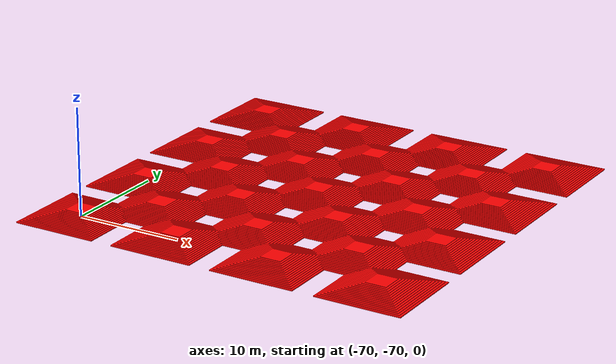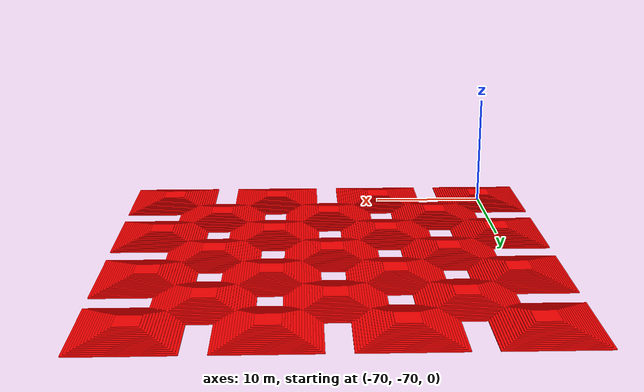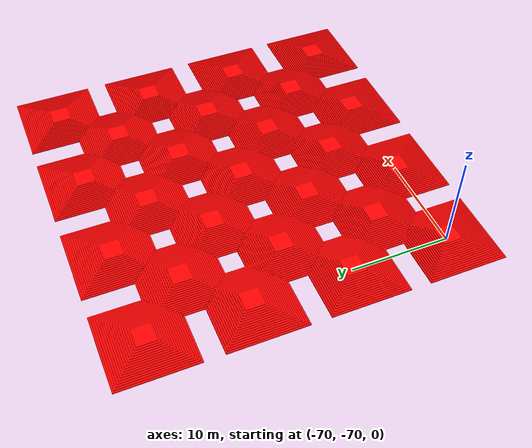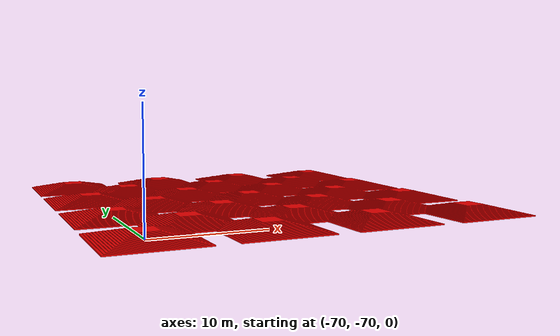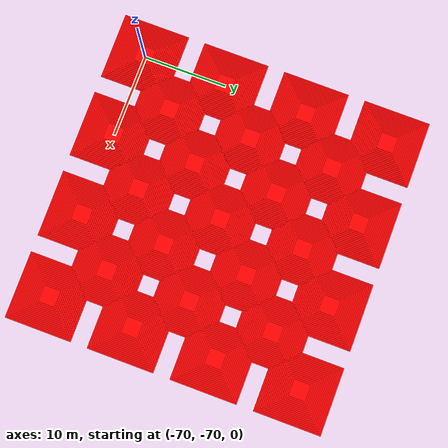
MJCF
<mujoco model="random_box_terrain">
    <compiler angle="degree" coordinate="local"/>
    <option timestep="0.01" gravity="0 0 -9.81" integrator="RK4"/>

    <asset>
        <texture type="2d" name="Plastic006_color"      file="../../textures/Plastic006_2K-PNG/Plastic006_2K-PNG_Color.png"/>
        <texture type="2d" name="Plastic006_roughness"  file="../../textures/Plastic006_2K-PNG/Plastic006_2K-PNG_Roughness.png"/>
        <texture type="2d" name="Plastic006_normal"     file="../../textures/Plastic006_2K-PNG/Plastic006_2K-PNG_NormalDX.png"/>

        <material name="pbr_plastic_black" metallic ="0.05" roughness="1.0" rgba="1 0 0 1.0">
        <layer role="rgb"        texture="Plastic006_color"/>
        <layer role="normal"     texture="Plastic006_normal"/>
        <layer role="roughness"  texture="Plastic006_roughness"/>
        </material>

        <texture type="2d" name="Plastic013A_color"      file="../../textures/Plastic013A_2K-PNG/Plastic013A_2K-PNG_Color.png"/>
        <texture type="2d" name="Plastic013A_roughness"  file="../../textures/Plastic013A_2K-PNG/Plastic013A_2K-PNG_Roughness.png"/>
        <texture type="2d" name="Plastic013A_normal"     file="../../textures/Plastic013A_2K-PNG/Plastic013A_2K-PNG_NormalDX.png"/>

        <material name="pbr_plastic_white" metallic ="0.05" roughness="1.0" rgba="1 0 0 1.0">
        <layer role="rgb"        texture="Plastic013A_color"/>
        <layer role="normal"     texture="Plastic013A_normal"/>
        <layer role="roughness"  texture="Plastic013A_roughness"/>
        </material>

        <texture type="2d" name="Plastic010_color"      file="../../textures/Plastic010_2K-PNG/Plastic010_2K-PNG_Color.png"/>
        <texture type="2d" name="Plastic010_roughness"  file="../../textures/Plastic010_2K-PNG/Plastic010_2K-PNG_Roughness.png"/>
        <texture type="2d" name="Plastic010_normal"     file="../../textures/Plastic010_2K-PNG/Plastic010_2K-PNG_NormalDX.png"/>

        <material name="pbr_plastic_gray" metallic ="0.05" roughness="1.0" rgba="1 0 0 1.0">
        <layer role="rgb"        texture="Plastic010_color"/>
        <layer role="normal"     texture="Plastic010_normal"/>
        <layer role="roughness"  texture="Plastic010_roughness"/>
        </material>
    </asset>
    <worldbody>
        <body name="offset" pos="-55 -55 0">
            <body name="terrain" pos="-5 5 0.0">

                <geom type="box" pos="-5.0 -5.0 0.0"  size="4.0 4.0  0.05"   material="pbr_plastic_gray"/>
                <geom type="box" pos="-5.0 -5.0 0.05" size="3.8 3.8  0.05"   material="pbr_plastic_white"/>
                <geom type="box" pos="-5.0 -5.0 0.1"  size="3.6 3.6  0.05"   material="pbr_plastic_gray"/>
                <geom type="box" pos="-5.0 -5.0 0.15" size="3.4 3.4  0.05"   material="pbr_plastic_white"/>
                <geom type="box" pos="-5.0 -5.0 0.2"  size="3.2 3.2  0.05"   material="pbr_plastic_gray"/>
                <geom type="box" pos="-5.0 -5.0 0.25" size="3.0 3.0  0.05"   material="pbr_plastic_white"/>
                <geom type="box" pos="-5.0 -5.0 0.3"  size="2.8 2.8  0.05"   material="pbr_plastic_gray"/>
                <geom type="box" pos="-5.0 -5.0 0.35" size="2.6 2.6  0.05"   material="pbr_plastic_white"/>
                <geom type="box" pos="-5.0 -5.0 0.4"  size="2.4 2.4  0.05"   material="pbr_plastic_gray"/>
                <geom type="box" pos="-5.0 -5.0 0.45" size="2.2 2.2  0.05"   material="pbr_plastic_white"/>
                <geom type="box" pos="-5.0 -5.0 0.5"  size="2.0 2.0  0.05"   material="pbr_plastic_gray"/>
                <geom type="box" pos="-5.0 -5.0 0.55" size="1.8 1.8  0.05"   material="pbr_plastic_white"/>
                <geom type="box" pos="-5.0 -5.0 0.6"  size="1.6 1.6  0.05"   material="pbr_plastic_gray"/>
                <geom type="box" pos="-5.0 -5.0 0.65" size="1.4 1.4  0.05"   material="pbr_plastic_white"/>
                <geom type="box" pos="-5.0 -5.0 0.7"  size="1.2 1.2  0.05"   material="pbr_plastic_gray"/>
                <geom type="box" pos="-5.0 -5.0 0.75" size="1.0 1.0  0.05"   material="pbr_plastic_white"/>

                <geom type="box" pos="5.0 -5.0 0.0"  size="4.0 4.0  0.05"   material="pbr_plastic_gray"/>
                <geom type="box" pos="5.0 -5.0 0.05" size="3.8 3.8  0.05"   material="pbr_plastic_white"/>
                <geom type="box" pos="5.0 -5.0 0.1"  size="3.6 3.6  0.05"   material="pbr_plastic_gray"/>
                <geom type="box" pos="5.0 -5.0 0.15" size="3.4 3.4  0.05"   material="pbr_plastic_white"/>
                <geom type="box" pos="5.0 -5.0 0.2"  size="3.2 3.2  0.05"   material="pbr_plastic_gray"/>
                <geom type="box" pos="5.0 -5.0 0.25" size="3.0 3.0  0.05"   material="pbr_plastic_white"/>
                <geom type="box" pos="5.0 -5.0 0.3"  size="2.8 2.8  0.05"   material="pbr_plastic_gray"/>
                <geom type="box" pos="5.0 -5.0 0.35" size="2.6 2.6  0.05"   material="pbr_plastic_white"/>
                <geom type="box" pos="5.0 -5.0 0.4"  size="2.4 2.4  0.05"   material="pbr_plastic_gray"/>
                <geom type="box" pos="5.0 -5.0 0.45" size="2.2 2.2  0.05"   material="pbr_plastic_white"/>
                <geom type="box" pos="5.0 -5.0 0.5"  size="2.0 2.0  0.05"   material="pbr_plastic_gray"/>
                <geom type="box" pos="5.0 -5.0 0.55" size="1.8 1.8  0.05"   material="pbr_plastic_white"/>
                <geom type="box" pos="5.0 -5.0 0.6"  size="1.6 1.6  0.05"   material="pbr_plastic_gray"/>
                <geom type="box" pos="5.0 -5.0 0.65" size="1.4 1.4  0.05"   material="pbr_plastic_white"/>
                <geom type="box" pos="5.0 -5.0 0.7"  size="1.2 1.2  0.05"   material="pbr_plastic_gray"/>
                <geom type="box" pos="5.0 -5.0 0.75" size="1.0 1.0  0.05"   material="pbr_plastic_white"/>

                <geom type="box" pos="15.0 -5.0 0.0"  size="4.0 4.0  0.05"   material="pbr_plastic_gray"/>
                <geom type="box" pos="15.0 -5.0 0.05" size="3.8 3.8  0.05"   material="pbr_plastic_white"/>
                <geom type="box" pos="15.0 -5.0 0.1"  size="3.6 3.6  0.05"   material="pbr_plastic_gray"/>
                <geom type="box" pos="15.0 -5.0 0.15" size="3.4 3.4  0.05"   material="pbr_plastic_white"/>
                <geom type="box" pos="15.0 -5.0 0.2"  size="3.2 3.2  0.05"   material="pbr_plastic_gray"/>
                <geom type="box" pos="15.0 -5.0 0.25" size="3.0 3.0  0.05"   material="pbr_plastic_white"/>
                <geom type="box" pos="15.0 -5.0 0.3"  size="2.8 2.8  0.05"   material="pbr_plastic_gray"/>
                <geom type="box" pos="15.0 -5.0 0.35" size="2.6 2.6  0.05"   material="pbr_plastic_white"/>
                <geom type="box" pos="15.0 -5.0 0.4"  size="2.4 2.4  0.05"   material="pbr_plastic_gray"/>
                <geom type="box" pos="15.0 -5.0 0.45" size="2.2 2.2  0.05"   material="pbr_plastic_white"/>
                <geom type="box" pos="15.0 -5.0 0.5"  size="2.0 2.0  0.05"   material="pbr_plastic_gray"/>
                <geom type="box" pos="15.0 -5.0 0.55" size="1.8 1.8  0.05"   material="pbr_plastic_white"/>
                <geom type="box" pos="15.0 -5.0 0.6"  size="1.6 1.6  0.05"   material="pbr_plastic_gray"/>
                <geom type="box" pos="15.0 -5.0 0.65" size="1.4 1.4  0.05"   material="pbr_plastic_white"/>
                <geom type="box" pos="15.0 -5.0 0.7"  size="1.2 1.2  0.05"   material="pbr_plastic_gray"/>
                <geom type="box" pos="15.0 -5.0 0.75" size="1.0 1.0  0.05"   material="pbr_plastic_white"/>

                <geom type="box" pos="-5.0 5.0 0.0"  size="4.0 4.0  0.05"   material="pbr_plastic_gray"/>
                <geom type="box" pos="-5.0 5.0 0.05" size="3.8 3.8  0.05"   material="pbr_plastic_white"/>
                <geom type="box" pos="-5.0 5.0 0.1"  size="3.6 3.6  0.05"   material="pbr_plastic_gray"/>
                <geom type="box" pos="-5.0 5.0 0.15" size="3.4 3.4  0.05"   material="pbr_plastic_white"/>
                <geom type="box" pos="-5.0 5.0 0.2"  size="3.2 3.2  0.05"   material="pbr_plastic_gray"/>
                <geom type="box" pos="-5.0 5.0 0.25" size="3.0 3.0  0.05"   material="pbr_plastic_white"/>
                <geom type="box" pos="-5.0 5.0 0.3"  size="2.8 2.8  0.05"   material="pbr_plastic_gray"/>
                <geom type="box" pos="-5.0 5.0 0.35" size="2.6 2.6  0.05"   material="pbr_plastic_white"/>
                <geom type="box" pos="-5.0 5.0 0.4"  size="2.4 2.4  0.05"   material="pbr_plastic_gray"/>
                <geom type="box" pos="-5.0 5.0 0.45" size="2.2 2.2  0.05"   material="pbr_plastic_white"/>
                <geom type="box" pos="-5.0 5.0 0.5"  size="2.0 2.0  0.05"   material="pbr_plastic_gray"/>
                <geom type="box" pos="-5.0 5.0 0.55" size="1.8 1.8  0.05"   material="pbr_plastic_white"/>
                <geom type="box" pos="-5.0 5.0 0.6"  size="1.6 1.6  0.05"   material="pbr_plastic_gray"/>
                <geom type="box" pos="-5.0 5.0 0.65" size="1.4 1.4  0.05"   material="pbr_plastic_white"/>
                <geom type="box" pos="-5.0 5.0 0.7"  size="1.2 1.2  0.05"   material="pbr_plastic_gray"/>
                <geom type="box" pos="-5.0 5.0 0.75" size="1.0 1.0  0.05"   material="pbr_plastic_white"/>

                <geom type="box" pos="5.0 5.0 0.0"  size="4.0 4.0  0.05"   material="pbr_plastic_gray"/>
                <geom type="box" pos="5.0 5.0 0.05" size="3.8 3.8  0.05"   material="pbr_plastic_white"/>
                <geom type="box" pos="5.0 5.0 0.1"  size="3.6 3.6  0.05"   material="pbr_plastic_gray"/>
                <geom type="box" pos="5.0 5.0 0.15" size="3.4 3.4  0.05"   material="pbr_plastic_white"/>
                <geom type="box" pos="5.0 5.0 0.2"  size="3.2 3.2  0.05"   material="pbr_plastic_gray"/>
                <geom type="box" pos="5.0 5.0 0.25" size="3.0 3.0  0.05"   material="pbr_plastic_white"/>
                <geom type="box" pos="5.0 5.0 0.3"  size="2.8 2.8  0.05"   material="pbr_plastic_gray"/>
                <geom type="box" pos="5.0 5.0 0.35" size="2.6 2.6  0.05"   material="pbr_plastic_white"/>
                <geom type="box" pos="5.0 5.0 0.4"  size="2.4 2.4  0.05"   material="pbr_plastic_gray"/>
                <geom type="box" pos="5.0 5.0 0.45" size="2.2 2.2  0.05"   material="pbr_plastic_white"/>
                <geom type="box" pos="5.0 5.0 0.5"  size="2.0 2.0  0.05"   material="pbr_plastic_gray"/>
                <geom type="box" pos="5.0 5.0 0.55" size="1.8 1.8  0.05"   material="pbr_plastic_white"/>
                <geom type="box" pos="5.0 5.0 0.6"  size="1.6 1.6  0.05"   material="pbr_plastic_gray"/>
                <geom type="box" pos="5.0 5.0 0.65" size="1.4 1.4  0.05"   material="pbr_plastic_white"/>
                <geom type="box" pos="5.0 5.0 0.7"  size="1.2 1.2  0.05"   material="pbr_plastic_gray"/>
                <geom type="box" pos="5.0 5.0 0.75" size="1.0 1.0  0.05"   material="pbr_plastic_white"/>

                <geom type="box" pos="15.0 5.0 0.0"  size="4.0 4.0  0.05"   material="pbr_plastic_gray"/>
                <geom type="box" pos="15.0 5.0 0.05" size="3.8 3.8  0.05"   material="pbr_plastic_white"/>
                <geom type="box" pos="15.0 5.0 0.1"  size="3.6 3.6  0.05"   material="pbr_plastic_gray"/>
                <geom type="box" pos="15.0 5.0 0.15" size="3.4 3.4  0.05"   material="pbr_plastic_white"/>
                <geom type="box" pos="15.0 5.0 0.2"  size="3.2 3.2  0.05"   material="pbr_plastic_gray"/>
                <geom type="box" pos="15.0 5.0 0.25" size="3.0 3.0  0.05"   material="pbr_plastic_white"/>
                <geom type="box" pos="15.0 5.0 0.3"  size="2.8 2.8  0.05"   material="pbr_plastic_gray"/>
                <geom type="box" pos="15.0 5.0 0.35" size="2.6 2.6  0.05"   material="pbr_plastic_white"/>
                <geom type="box" pos="15.0 5.0 0.4"  size="2.4 2.4  0.05"   material="pbr_plastic_gray"/>
                <geom type="box" pos="15.0 5.0 0.45" size="2.2 2.2  0.05"   material="pbr_plastic_white"/>
                <geom type="box" pos="15.0 5.0 0.5"  size="2.0 2.0  0.05"   material="pbr_plastic_gray"/>
                <geom type="box" pos="15.0 5.0 0.55" size="1.8 1.8  0.05"   material="pbr_plastic_white"/>
                <geom type="box" pos="15.0 5.0 0.6"  size="1.6 1.6  0.05"   material="pbr_plastic_gray"/>
                <geom type="box" pos="15.0 5.0 0.65" size="1.4 1.4  0.05"   material="pbr_plastic_white"/>
                <geom type="box" pos="15.0 5.0 0.7"  size="1.2 1.2  0.05"   material="pbr_plastic_gray"/>
                <geom type="box" pos="15.0 5.0 0.75" size="1.0 1.0  0.05"   material="pbr_plastic_white"/>

                <geom type="box" pos="-5.0 -15.0 0.0"  size="4.0 4.0  0.05"   material="pbr_plastic_gray"/>
                <geom type="box" pos="-5.0 -15.0 0.05" size="3.8 3.8  0.05"   material="pbr_plastic_white"/>
                <geom type="box" pos="-5.0 -15.0 0.1"  size="3.6 3.6  0.05"   material="pbr_plastic_gray"/>
                <geom type="box" pos="-5.0 -15.0 0.15" size="3.4 3.4  0.05"   material="pbr_plastic_white"/>
                <geom type="box" pos="-5.0 -15.0 0.2"  size="3.2 3.2  0.05"   material="pbr_plastic_gray"/>
                <geom type="box" pos="-5.0 -15.0 0.25" size="3.0 3.0  0.05"   material="pbr_plastic_white"/>
                <geom type="box" pos="-5.0 -15.0 0.3"  size="2.8 2.8  0.05"   material="pbr_plastic_gray"/>
                <geom type="box" pos="-5.0 -15.0 0.35" size="2.6 2.6  0.05"   material="pbr_plastic_white"/>
                <geom type="box" pos="-5.0 -15.0 0.4"  size="2.4 2.4  0.05"   material="pbr_plastic_gray"/>
                <geom type="box" pos="-5.0 -15.0 0.45" size="2.2 2.2  0.05"   material="pbr_plastic_white"/>
                <geom type="box" pos="-5.0 -15.0 0.5"  size="2.0 2.0  0.05"   material="pbr_plastic_gray"/>
                <geom type="box" pos="-5.0 -15.0 0.55" size="1.8 1.8  0.05"   material="pbr_plastic_white"/>
                <geom type="box" pos="-5.0 -15.0 0.6"  size="1.6 1.6  0.05"   material="pbr_plastic_gray"/>
                <geom type="box" pos="-5.0 -15.0 0.65" size="1.4 1.4  0.05"   material="pbr_plastic_white"/>
                <geom type="box" pos="-5.0 -15.0 0.7"  size="1.2 1.2  0.05"   material="pbr_plastic_gray"/>
                <geom type="box" pos="-5.0 -15.0 0.75" size="1.0 1.0  0.05"   material="pbr_plastic_white"/>

                <geom type="box" pos="5.0 -15.0 0.0"  size="4.0 4.0  0.05"   material="pbr_plastic_gray"/>
                <geom type="box" pos="5.0 -15.0 0.05" size="3.8 3.8  0.05"   material="pbr_plastic_white"/>
                <geom type="box" pos="5.0 -15.0 0.1"  size="3.6 3.6  0.05"   material="pbr_plastic_gray"/>
                <geom type="box" pos="5.0 -15.0 0.15" size="3.4 3.4  0.05"   material="pbr_plastic_white"/>
                <geom type="box" pos="5.0 -15.0 0.2"  size="3.2 3.2  0.05"   material="pbr_plastic_gray"/>
                <geom type="box" pos="5.0 -15.0 0.25" size="3.0 3.0  0.05"   material="pbr_plastic_white"/>
                <geom type="box" pos="5.0 -15.0 0.3"  size="2.8 2.8  0.05"   material="pbr_plastic_gray"/>
                <geom type="box" pos="5.0 -15.0 0.35" size="2.6 2.6  0.05"   material="pbr_plastic_white"/>
                <geom type="box" pos="5.0 -15.0 0.4"  size="2.4 2.4  0.05"   material="pbr_plastic_gray"/>
                <geom type="box" pos="5.0 -15.0 0.45" size="2.2 2.2  0.05"   material="pbr_plastic_white"/>
                <geom type="box" pos="5.0 -15.0 0.5"  size="2.0 2.0  0.05"   material="pbr_plastic_gray"/>
                <geom type="box" pos="5.0 -15.0 0.55" size="1.8 1.8  0.05"   material="pbr_plastic_white"/>
                <geom type="box" pos="5.0 -15.0 0.6"  size="1.6 1.6  0.05"   material="pbr_plastic_gray"/>
                <geom type="box" pos="5.0 -15.0 0.65" size="1.4 1.4  0.05"   material="pbr_plastic_white"/>
                <geom type="box" pos="5.0 -15.0 0.7"  size="1.2 1.2  0.05"   material="pbr_plastic_gray"/>
                <geom type="box" pos="5.0 -15.0 0.75" size="1.0 1.0  0.05"   material="pbr_plastic_white"/>

                <geom type="box" pos="15.0 -15.0 0.0"  size="4.0 4.0  0.05"   material="pbr_plastic_gray"/>
                <geom type="box" pos="15.0 -15.0 0.05" size="3.8 3.8  0.05"   material="pbr_plastic_white"/>
                <geom type="box" pos="15.0 -15.0 0.1"  size="3.6 3.6  0.05"   material="pbr_plastic_gray"/>
                <geom type="box" pos="15.0 -15.0 0.15" size="3.4 3.4  0.05"   material="pbr_plastic_white"/>
                <geom type="box" pos="15.0 -15.0 0.2"  size="3.2 3.2  0.05"   material="pbr_plastic_gray"/>
                <geom type="box" pos="15.0 -15.0 0.25" size="3.0 3.0  0.05"   material="pbr_plastic_white"/>
                <geom type="box" pos="15.0 -15.0 0.3"  size="2.8 2.8  0.05"   material="pbr_plastic_gray"/>
                <geom type="box" pos="15.0 -15.0 0.35" size="2.6 2.6  0.05"   material="pbr_plastic_white"/>
                <geom type="box" pos="15.0 -15.0 0.4"  size="2.4 2.4  0.05"   material="pbr_plastic_gray"/>
                <geom type="box" pos="15.0 -15.0 0.45" size="2.2 2.2  0.05"   material="pbr_plastic_white"/>
                <geom type="box" pos="15.0 -15.0 0.5"  size="2.0 2.0  0.05"   material="pbr_plastic_gray"/>
                <geom type="box" pos="15.0 -15.0 0.55" size="1.8 1.8  0.05"   material="pbr_plastic_white"/>
                <geom type="box" pos="15.0 -15.0 0.6"  size="1.6 1.6  0.05"   material="pbr_plastic_gray"/>
                <geom type="box" pos="15.0 -15.0 0.65" size="1.4 1.4  0.05"   material="pbr_plastic_white"/>
                <geom type="box" pos="15.0 -15.0 0.7"  size="1.2 1.2  0.05"   material="pbr_plastic_gray"/>
                <geom type="box" pos="15.0 -15.0 0.75" size="1.0 1.0  0.05"   material="pbr_plastic_white"/>

                <geom type="box" pos="-10.0 0 0.0"  size="4.0 4.0  0.05"   material="pbr_plastic_gray"/>
                <geom type="box" pos="-10.0 0 0.05" size="3.8 3.8  0.05"   material="pbr_plastic_white"/>
                <geom type="box" pos="-10.0 0 0.1"  size="3.6 3.6  0.05"   material="pbr_plastic_gray"/>
                <geom type="box" pos="-10.0 0 0.15" size="3.4 3.4  0.05"   material="pbr_plastic_white"/>
                <geom type="box" pos="-10.0 0 0.2"  size="3.2 3.2  0.05"   material="pbr_plastic_gray"/>
                <geom type="box" pos="-10.0 0 0.25" size="3.0 3.0  0.05"   material="pbr_plastic_white"/>
                <geom type="box" pos="-10.0 0 0.3"  size="2.8 2.8  0.05"   material="pbr_plastic_gray"/>
                <geom type="box" pos="-10.0 0 0.35" size="2.6 2.6  0.05"   material="pbr_plastic_white"/>
                <geom type="box" pos="-10.0 0 0.4"  size="2.4 2.4  0.05"   material="pbr_plastic_gray"/>
                <geom type="box" pos="-10.0 0 0.45" size="2.2 2.2  0.05"   material="pbr_plastic_white"/>
                <geom type="box" pos="-10.0 0 0.5"  size="2.0 2.0  0.05"   material="pbr_plastic_gray"/>
                <geom type="box" pos="-10.0 0 0.55" size="1.8 1.8  0.05"   material="pbr_plastic_white"/>
                <geom type="box" pos="-10.0 0 0.6"  size="1.6 1.6  0.05"   material="pbr_plastic_gray"/>
                <geom type="box" pos="-10.0 0 0.65" size="1.4 1.4  0.05"   material="pbr_plastic_white"/>
                <geom type="box" pos="-10.0 0 0.7"  size="1.2 1.2  0.05"   material="pbr_plastic_gray"/>
                <geom type="box" pos="-10.0 0 0.75" size="1.0 1.0  0.05"   material="pbr_plastic_white"/>

                <geom type="box" pos="0.0 0.0 0.0"  size="4.0 4.0  0.05"   material="pbr_plastic_gray"/>
                <geom type="box" pos="0.0 0.0 0.05" size="3.8 3.8  0.05"   material="pbr_plastic_white"/>
                <geom type="box" pos="0.0 0.0 0.1"  size="3.6 3.6  0.05"   material="pbr_plastic_gray"/>
                <geom type="box" pos="0.0 0.0 0.15" size="3.4 3.4  0.05"   material="pbr_plastic_white"/>
                <geom type="box" pos="0.0 0.0 0.2"  size="3.2 3.2  0.05"   material="pbr_plastic_gray"/>
                <geom type="box" pos="0.0 0.0 0.25" size="3.0 3.0  0.05"   material="pbr_plastic_white"/>
                <geom type="box" pos="0.0 0.0 0.3"  size="2.8 2.8  0.05"   material="pbr_plastic_gray"/>
                <geom type="box" pos="0.0 0.0 0.35" size="2.6 2.6  0.05"   material="pbr_plastic_white"/>
                <geom type="box" pos="0.0 0.0 0.4"  size="2.4 2.4  0.05"   material="pbr_plastic_gray"/>
                <geom type="box" pos="0.0 0.0 0.45" size="2.2 2.2  0.05"   material="pbr_plastic_white"/>
                <geom type="box" pos="0.0 0.0 0.5"  size="2.0 2.0  0.05"   material="pbr_plastic_gray"/>
                <geom type="box" pos="0.0 0.0 0.55" size="1.8 1.8  0.05"   material="pbr_plastic_white"/>
                <geom type="box" pos="0.0 0.0 0.6"  size="1.6 1.6  0.05"   material="pbr_plastic_gray"/>
                <geom type="box" pos="0.0 0.0 0.65" size="1.4 1.4  0.05"   material="pbr_plastic_white"/>
                <geom type="box" pos="0.0 0.0 0.7"  size="1.2 1.2  0.05"   material="pbr_plastic_gray"/>
                <geom type="box" pos="0.0 0.0 0.75" size="1.0 1.0  0.05"   material="pbr_plastic_white"/>

                <geom type="box" pos="10.0 0.0 0.0"  size="4.0 4.0  0.05"   material="pbr_plastic_gray"/>
                <geom type="box" pos="10.0 0.0 0.05" size="3.8 3.8  0.05"   material="pbr_plastic_white"/>
                <geom type="box" pos="10.0 0.0 0.1"  size="3.6 3.6  0.05"   material="pbr_plastic_gray"/>
                <geom type="box" pos="10.0 0.0 0.15" size="3.4 3.4  0.05"   material="pbr_plastic_white"/>
                <geom type="box" pos="10.0 0.0 0.2"  size="3.2 3.2  0.05"   material="pbr_plastic_gray"/>
                <geom type="box" pos="10.0 0.0 0.25" size="3.0 3.0  0.05"   material="pbr_plastic_white"/>
                <geom type="box" pos="10.0 0.0 0.3"  size="2.8 2.8  0.05"   material="pbr_plastic_gray"/>
                <geom type="box" pos="10.0 0.0 0.35" size="2.6 2.6  0.05"   material="pbr_plastic_white"/>
                <geom type="box" pos="10.0 0.0 0.4"  size="2.4 2.4  0.05"   material="pbr_plastic_gray"/>
                <geom type="box" pos="10.0 0.0 0.45" size="2.2 2.2  0.05"   material="pbr_plastic_white"/>
                <geom type="box" pos="10.0 0.0 0.5"  size="2.0 2.0  0.05"   material="pbr_plastic_gray"/>
                <geom type="box" pos="10.0 0.0 0.55" size="1.8 1.8  0.05"   material="pbr_plastic_white"/>
                <geom type="box" pos="10.0 0.0 0.6"  size="1.6 1.6  0.05"   material="pbr_plastic_gray"/>
                <geom type="box" pos="10.0 0.0 0.65" size="1.4 1.4  0.05"   material="pbr_plastic_white"/>
                <geom type="box" pos="10.0 0.0 0.7"  size="1.2 1.2  0.05"   material="pbr_plastic_gray"/>
                <geom type="box" pos="10.0 0.0 0.75" size="1.0 1.0  0.05"   material="pbr_plastic_white"/>

                <geom type="box" pos="20.0 0.0 0.0"  size="4.0 4.0  0.05"   material="pbr_plastic_gray"/>
                <geom type="box" pos="20.0 0.0 0.05" size="3.8 3.8  0.05"   material="pbr_plastic_white"/>
                <geom type="box" pos="20.0 0.0 0.1"  size="3.6 3.6  0.05"   material="pbr_plastic_gray"/>
                <geom type="box" pos="20.0 0.0 0.15" size="3.4 3.4  0.05"   material="pbr_plastic_white"/>
                <geom type="box" pos="20.0 0.0 0.2"  size="3.2 3.2  0.05"   material="pbr_plastic_gray"/>
                <geom type="box" pos="20.0 0.0 0.25" size="3.0 3.0  0.05"   material="pbr_plastic_white"/>
                <geom type="box" pos="20.0 0.0 0.3"  size="2.8 2.8  0.05"   material="pbr_plastic_gray"/>
                <geom type="box" pos="20.0 0.0 0.35" size="2.6 2.6  0.05"   material="pbr_plastic_white"/>
                <geom type="box" pos="20.0 0.0 0.4"  size="2.4 2.4  0.05"   material="pbr_plastic_gray"/>
                <geom type="box" pos="20.0 0.0 0.45" size="2.2 2.2  0.05"   material="pbr_plastic_white"/>
                <geom type="box" pos="20.0 0.0 0.5"  size="2.0 2.0  0.05"   material="pbr_plastic_gray"/>
                <geom type="box" pos="20.0 0.0 0.55" size="1.8 1.8  0.05"   material="pbr_plastic_white"/>
                <geom type="box" pos="20.0 0.0 0.6"  size="1.6 1.6  0.05"   material="pbr_plastic_gray"/>
                <geom type="box" pos="20.0 0.0 0.65" size="1.4 1.4  0.05"   material="pbr_plastic_white"/>
                <geom type="box" pos="20.0 0.0 0.7"  size="1.2 1.2  0.05"   material="pbr_plastic_gray"/>
                <geom type="box" pos="20.0 0.0 0.75" size="1.0 1.0  0.05"   material="pbr_plastic_white"/>

                <geom type="box" pos="-10.0 10 0.0"  size="4.0 4.0  0.05"   material="pbr_plastic_gray"/>
                <geom type="box" pos="-10.0 10 0.05" size="3.8 3.8  0.05"   material="pbr_plastic_white"/>
                <geom type="box" pos="-10.0 10 0.1"  size="3.6 3.6  0.05"   material="pbr_plastic_gray"/>
                <geom type="box" pos="-10.0 10 0.15" size="3.4 3.4  0.05"   material="pbr_plastic_white"/>
                <geom type="box" pos="-10.0 10 0.2"  size="3.2 3.2  0.05"   material="pbr_plastic_gray"/>
                <geom type="box" pos="-10.0 10 0.25" size="3.0 3.0  0.05"   material="pbr_plastic_white"/>
                <geom type="box" pos="-10.0 10 0.3"  size="2.8 2.8  0.05"   material="pbr_plastic_gray"/>
                <geom type="box" pos="-10.0 10 0.35" size="2.6 2.6  0.05"   material="pbr_plastic_white"/>
                <geom type="box" pos="-10.0 10 0.4"  size="2.4 2.4  0.05"   material="pbr_plastic_gray"/>
                <geom type="box" pos="-10.0 10 0.45" size="2.2 2.2  0.05"   material="pbr_plastic_white"/>
                <geom type="box" pos="-10.0 10 0.5"  size="2.0 2.0  0.05"   material="pbr_plastic_gray"/>
                <geom type="box" pos="-10.0 10 0.55" size="1.8 1.8  0.05"   material="pbr_plastic_white"/>
                <geom type="box" pos="-10.0 10 0.6"  size="1.6 1.6  0.05"   material="pbr_plastic_gray"/>
                <geom type="box" pos="-10.0 10 0.65" size="1.4 1.4  0.05"   material="pbr_plastic_white"/>
                <geom type="box" pos="-10.0 10 0.7"  size="1.2 1.2  0.05"   material="pbr_plastic_gray"/>
                <geom type="box" pos="-10.0 10 0.75" size="1.0 1.0  0.05"   material="pbr_plastic_white"/>

                <geom type="box" pos="0.0 10.0 0.0"  size="4.0 4.0  0.05"   material="pbr_plastic_gray"/>
                <geom type="box" pos="0.0 10.0 0.05" size="3.8 3.8  0.05"   material="pbr_plastic_white"/>
                <geom type="box" pos="0.0 10.0 0.1"  size="3.6 3.6  0.05"   material="pbr_plastic_gray"/>
                <geom type="box" pos="0.0 10.0 0.15" size="3.4 3.4  0.05"   material="pbr_plastic_white"/>
                <geom type="box" pos="0.0 10.0 0.2"  size="3.2 3.2  0.05"   material="pbr_plastic_gray"/>
                <geom type="box" pos="0.0 10.0 0.25" size="3.0 3.0  0.05"   material="pbr_plastic_white"/>
                <geom type="box" pos="0.0 10.0 0.3"  size="2.8 2.8  0.05"   material="pbr_plastic_gray"/>
                <geom type="box" pos="0.0 10.0 0.35" size="2.6 2.6  0.05"   material="pbr_plastic_white"/>
                <geom type="box" pos="0.0 10.0 0.4"  size="2.4 2.4  0.05"   material="pbr_plastic_gray"/>
                <geom type="box" pos="0.0 10.0 0.45" size="2.2 2.2  0.05"   material="pbr_plastic_white"/>
                <geom type="box" pos="0.0 10.0 0.5"  size="2.0 2.0  0.05"   material="pbr_plastic_gray"/>
                <geom type="box" pos="0.0 10.0 0.55" size="1.8 1.8  0.05"   material="pbr_plastic_white"/>
                <geom type="box" pos="0.0 10.0 0.6"  size="1.6 1.6  0.05"   material="pbr_plastic_gray"/>
                <geom type="box" pos="0.0 10.0 0.65" size="1.4 1.4  0.05"   material="pbr_plastic_white"/>
                <geom type="box" pos="0.0 10.0 0.7"  size="1.2 1.2  0.05"   material="pbr_plastic_gray"/>
                <geom type="box" pos="0.0 10.0 0.75" size="1.0 1.0  0.05"   material="pbr_plastic_white"/>

                <geom type="box" pos="10.0 10.0 0.0"  size="4.0 4.0  0.05"   material="pbr_plastic_gray"/>
                <geom type="box" pos="10.0 10.0 0.05" size="3.8 3.8  0.05"   material="pbr_plastic_white"/>
                <geom type="box" pos="10.0 10.0 0.1"  size="3.6 3.6  0.05"   material="pbr_plastic_gray"/>
                <geom type="box" pos="10.0 10.0 0.15" size="3.4 3.4  0.05"   material="pbr_plastic_white"/>
                <geom type="box" pos="10.0 10.0 0.2"  size="3.2 3.2  0.05"   material="pbr_plastic_gray"/>
                <geom type="box" pos="10.0 10.0 0.25" size="3.0 3.0  0.05"   material="pbr_plastic_white"/>
                <geom type="box" pos="10.0 10.0 0.3"  size="2.8 2.8  0.05"   material="pbr_plastic_gray"/>
                <geom type="box" pos="10.0 10.0 0.35" size="2.6 2.6  0.05"   material="pbr_plastic_white"/>
                <geom type="box" pos="10.0 10.0 0.4"  size="2.4 2.4  0.05"   material="pbr_plastic_gray"/>
                <geom type="box" pos="10.0 10.0 0.45" size="2.2 2.2  0.05"   material="pbr_plastic_white"/>
                <geom type="box" pos="10.0 10.0 0.5"  size="2.0 2.0  0.05"   material="pbr_plastic_gray"/>
                <geom type="box" pos="10.0 10.0 0.55" size="1.8 1.8  0.05"   material="pbr_plastic_white"/>
                <geom type="box" pos="10.0 10.0 0.6"  size="1.6 1.6  0.05"   material="pbr_plastic_gray"/>
                <geom type="box" pos="10.0 10.0 0.65" size="1.4 1.4  0.05"   material="pbr_plastic_white"/>
                <geom type="box" pos="10.0 10.0 0.7"  size="1.2 1.2  0.05"   material="pbr_plastic_gray"/>
                <geom type="box" pos="10.0 10.0 0.75" size="1.0 1.0  0.05"   material="pbr_plastic_white"/>

                <geom type="box" pos="20.0 10.0 0.0"  size="4.0 4.0  0.05"   material="pbr_plastic_gray"/>
                <geom type="box" pos="20.0 10.0 0.05" size="3.8 3.8  0.05"   material="pbr_plastic_white"/>
                <geom type="box" pos="20.0 10.0 0.1"  size="3.6 3.6  0.05"   material="pbr_plastic_gray"/>
                <geom type="box" pos="20.0 10.0 0.15" size="3.4 3.4  0.05"   material="pbr_plastic_white"/>
                <geom type="box" pos="20.0 10.0 0.2"  size="3.2 3.2  0.05"   material="pbr_plastic_gray"/>
                <geom type="box" pos="20.0 10.0 0.25" size="3.0 3.0  0.05"   material="pbr_plastic_white"/>
                <geom type="box" pos="20.0 10.0 0.3"  size="2.8 2.8  0.05"   material="pbr_plastic_gray"/>
                <geom type="box" pos="20.0 10.0 0.35" size="2.6 2.6  0.05"   material="pbr_plastic_white"/>
                <geom type="box" pos="20.0 10.0 0.4"  size="2.4 2.4  0.05"   material="pbr_plastic_gray"/>
                <geom type="box" pos="20.0 10.0 0.45" size="2.2 2.2  0.05"   material="pbr_plastic_white"/>
                <geom type="box" pos="20.0 10.0 0.5"  size="2.0 2.0  0.05"   material="pbr_plastic_gray"/>
                <geom type="box" pos="20.0 10.0 0.55" size="1.8 1.8  0.05"   material="pbr_plastic_white"/>
                <geom type="box" pos="20.0 10.0 0.6"  size="1.6 1.6  0.05"   material="pbr_plastic_gray"/>
                <geom type="box" pos="20.0 10.0 0.65" size="1.4 1.4  0.05"   material="pbr_plastic_white"/>
                <geom type="box" pos="20.0 10.0 0.7"  size="1.2 1.2  0.05"   material="pbr_plastic_gray"/>
                <geom type="box" pos="20.0 10.0 0.75" size="1.0 1.0  0.05"   material="pbr_plastic_white"/>

                <geom type="box" pos="-10.0 -10 0.0"  size="4.0 4.0  0.05"   material="pbr_plastic_gray"/>
                <geom type="box" pos="-10.0 -10 0.05" size="3.8 3.8  0.05"   material="pbr_plastic_white"/>
                <geom type="box" pos="-10.0 -10 0.1"  size="3.6 3.6  0.05"   material="pbr_plastic_gray"/>
                <geom type="box" pos="-10.0 -10 0.15" size="3.4 3.4  0.05"   material="pbr_plastic_white"/>
                <geom type="box" pos="-10.0 -10 0.2"  size="3.2 3.2  0.05"   material="pbr_plastic_gray"/>
                <geom type="box" pos="-10.0 -10 0.25" size="3.0 3.0  0.05"   material="pbr_plastic_white"/>
                <geom type="box" pos="-10.0 -10 0.3"  size="2.8 2.8  0.05"   material="pbr_plastic_gray"/>
                <geom type="box" pos="-10.0 -10 0.35" size="2.6 2.6  0.05"   material="pbr_plastic_white"/>
                <geom type="box" pos="-10.0 -10 0.4"  size="2.4 2.4  0.05"   material="pbr_plastic_gray"/>
                <geom type="box" pos="-10.0 -10 0.45" size="2.2 2.2  0.05"   material="pbr_plastic_white"/>
                <geom type="box" pos="-10.0 -10 0.5"  size="2.0 2.0  0.05"   material="pbr_plastic_gray"/>
                <geom type="box" pos="-10.0 -10 0.55" size="1.8 1.8  0.05"   material="pbr_plastic_white"/>
                <geom type="box" pos="-10.0 -10 0.6"  size="1.6 1.6  0.05"   material="pbr_plastic_gray"/>
                <geom type="box" pos="-10.0 -10 0.65" size="1.4 1.4  0.05"   material="pbr_plastic_white"/>
                <geom type="box" pos="-10.0 -10 0.7"  size="1.2 1.2  0.05"   material="pbr_plastic_gray"/>
                <geom type="box" pos="-10.0 -10 0.75" size="1.0 1.0  0.05"   material="pbr_plastic_white"/>

                <geom type="box" pos="0.0 -10.0 0.0"  size="4.0 4.0  0.05"   material="pbr_plastic_gray"/>
                <geom type="box" pos="0.0 -10.0 0.05" size="3.8 3.8  0.05"   material="pbr_plastic_white"/>
                <geom type="box" pos="0.0 -10.0 0.1"  size="3.6 3.6  0.05"   material="pbr_plastic_gray"/>
                <geom type="box" pos="0.0 -10.0 0.15" size="3.4 3.4  0.05"   material="pbr_plastic_white"/>
                <geom type="box" pos="0.0 -10.0 0.2"  size="3.2 3.2  0.05"   material="pbr_plastic_gray"/>
                <geom type="box" pos="0.0 -10.0 0.25" size="3.0 3.0  0.05"   material="pbr_plastic_white"/>
                <geom type="box" pos="0.0 -10.0 0.3"  size="2.8 2.8  0.05"   material="pbr_plastic_gray"/>
                <geom type="box" pos="0.0 -10.0 0.35" size="2.6 2.6  0.05"   material="pbr_plastic_white"/>
                <geom type="box" pos="0.0 -10.0 0.4"  size="2.4 2.4  0.05"   material="pbr_plastic_gray"/>
                <geom type="box" pos="0.0 -10.0 0.45" size="2.2 2.2  0.05"   material="pbr_plastic_white"/>
                <geom type="box" pos="0.0 -10.0 0.5"  size="2.0 2.0  0.05"   material="pbr_plastic_gray"/>
                <geom type="box" pos="0.0 -10.0 0.55" size="1.8 1.8  0.05"   material="pbr_plastic_white"/>
                <geom type="box" pos="0.0 -10.0 0.6"  size="1.6 1.6  0.05"   material="pbr_plastic_gray"/>
                <geom type="box" pos="0.0 -10.0 0.65" size="1.4 1.4  0.05"   material="pbr_plastic_white"/>
                <geom type="box" pos="0.0 -10.0 0.7"  size="1.2 1.2  0.05"   material="pbr_plastic_gray"/>
                <geom type="box" pos="0.0 -10.0 0.75" size="1.0 1.0  0.05"   material="pbr_plastic_white"/>

                <geom type="box" pos="10.0 -10.0 0.0"  size="4.0 4.0  0.05"   material="pbr_plastic_gray"/>
                <geom type="box" pos="10.0 -10.0 0.05" size="3.8 3.8  0.05"   material="pbr_plastic_white"/>
                <geom type="box" pos="10.0 -10.0 0.1"  size="3.6 3.6  0.05"   material="pbr_plastic_gray"/>
                <geom type="box" pos="10.0 -10.0 0.15" size="3.4 3.4  0.05"   material="pbr_plastic_white"/>
                <geom type="box" pos="10.0 -10.0 0.2"  size="3.2 3.2  0.05"   material="pbr_plastic_gray"/>
                <geom type="box" pos="10.0 -10.0 0.25" size="3.0 3.0  0.05"   material="pbr_plastic_white"/>
                <geom type="box" pos="10.0 -10.0 0.3"  size="2.8 2.8  0.05"   material="pbr_plastic_gray"/>
                <geom type="box" pos="10.0 -10.0 0.35" size="2.6 2.6  0.05"   material="pbr_plastic_white"/>
                <geom type="box" pos="10.0 -10.0 0.4"  size="2.4 2.4  0.05"   material="pbr_plastic_gray"/>
                <geom type="box" pos="10.0 -10.0 0.45" size="2.2 2.2  0.05"   material="pbr_plastic_white"/>
                <geom type="box" pos="10.0 -10.0 0.5"  size="2.0 2.0  0.05"   material="pbr_plastic_gray"/>
                <geom type="box" pos="10.0 -10.0 0.55" size="1.8 1.8  0.05"   material="pbr_plastic_white"/>
                <geom type="box" pos="10.0 -10.0 0.6"  size="1.6 1.6  0.05"   material="pbr_plastic_gray"/>
                <geom type="box" pos="10.0 -10.0 0.65" size="1.4 1.4  0.05"   material="pbr_plastic_white"/>
                <geom type="box" pos="10.0 -10.0 0.7"  size="1.2 1.2  0.05"   material="pbr_plastic_gray"/>
                <geom type="box" pos="10.0 -10.0 0.75" size="1.0 1.0  0.05"   material="pbr_plastic_white"/>

                <geom type="box" pos="20.0 -10.0 0.0"  size="4.0 4.0  0.05"   material="pbr_plastic_gray"/>
                <geom type="box" pos="20.0 -10.0 0.05" size="3.8 3.8  0.05"   material="pbr_plastic_white"/>
                <geom type="box" pos="20.0 -10.0 0.1"  size="3.6 3.6  0.05"   material="pbr_plastic_gray"/>
                <geom type="box" pos="20.0 -10.0 0.15" size="3.4 3.4  0.05"   material="pbr_plastic_white"/>
                <geom type="box" pos="20.0 -10.0 0.2"  size="3.2 3.2  0.05"   material="pbr_plastic_gray"/>
                <geom type="box" pos="20.0 -10.0 0.25" size="3.0 3.0  0.05"   material="pbr_plastic_white"/>
                <geom type="box" pos="20.0 -10.0 0.3"  size="2.8 2.8  0.05"   material="pbr_plastic_gray"/>
                <geom type="box" pos="20.0 -10.0 0.35" size="2.6 2.6  0.05"   material="pbr_plastic_white"/>
                <geom type="box" pos="20.0 -10.0 0.4"  size="2.4 2.4  0.05"   material="pbr_plastic_gray"/>
                <geom type="box" pos="20.0 -10.0 0.45" size="2.2 2.2  0.05"   material="pbr_plastic_white"/>
                <geom type="box" pos="20.0 -10.0 0.5"  size="2.0 2.0  0.05"   material="pbr_plastic_gray"/>
                <geom type="box" pos="20.0 -10.0 0.55" size="1.8 1.8  0.05"   material="pbr_plastic_white"/>
                <geom type="box" pos="20.0 -10.0 0.6"  size="1.6 1.6  0.05"   material="pbr_plastic_gray"/>
                <geom type="box" pos="20.0 -10.0 0.65" size="1.4 1.4  0.05"   material="pbr_plastic_white"/>
                <geom type="box" pos="20.0 -10.0 0.7"  size="1.2 1.2  0.05"   material="pbr_plastic_gray"/>
                <geom type="box" pos="20.0 -10.0 0.75" size="1.0 1.0  0.05"   material="pbr_plastic_white"/>

                <geom type="box" pos="-10.0 -20 0.0"  size="4.0 4.0  0.05"   material="pbr_plastic_gray"/>
                <geom type="box" pos="-10.0 -20 0.05" size="3.8 3.8  0.05"   material="pbr_plastic_white"/>
                <geom type="box" pos="-10.0 -20 0.1"  size="3.6 3.6  0.05"   material="pbr_plastic_gray"/>
                <geom type="box" pos="-10.0 -20 0.15" size="3.4 3.4  0.05"   material="pbr_plastic_white"/>
                <geom type="box" pos="-10.0 -20 0.2"  size="3.2 3.2  0.05"   material="pbr_plastic_gray"/>
                <geom type="box" pos="-10.0 -20 0.25" size="3.0 3.0  0.05"   material="pbr_plastic_white"/>
                <geom type="box" pos="-10.0 -20 0.3"  size="2.8 2.8  0.05"   material="pbr_plastic_gray"/>
                <geom type="box" pos="-10.0 -20 0.35" size="2.6 2.6  0.05"   material="pbr_plastic_white"/>
                <geom type="box" pos="-10.0 -20 0.4"  size="2.4 2.4  0.05"   material="pbr_plastic_gray"/>
                <geom type="box" pos="-10.0 -20 0.45" size="2.2 2.2  0.05"   material="pbr_plastic_white"/>
                <geom type="box" pos="-10.0 -20 0.5"  size="2.0 2.0  0.05"   material="pbr_plastic_gray"/>
                <geom type="box" pos="-10.0 -20 0.55" size="1.8 1.8  0.05"   material="pbr_plastic_white"/>
                <geom type="box" pos="-10.0 -20 0.6"  size="1.6 1.6  0.05"   material="pbr_plastic_gray"/>
                <geom type="box" pos="-10.0 -20 0.65" size="1.4 1.4  0.05"   material="pbr_plastic_white"/>
                <geom type="box" pos="-10.0 -20 0.7"  size="1.2 1.2  0.05"   material="pbr_plastic_gray"/>
                <geom type="box" pos="-10.0 -20 0.75" size="1.0 1.0  0.05"   material="pbr_plastic_white"/>

                <geom type="box" pos="0.0 -20.0 0.0"  size="4.0 4.0  0.05"   material="pbr_plastic_gray"/>
                <geom type="box" pos="0.0 -20.0 0.05" size="3.8 3.8  0.05"   material="pbr_plastic_white"/>
                <geom type="box" pos="0.0 -20.0 0.1"  size="3.6 3.6  0.05"   material="pbr_plastic_gray"/>
                <geom type="box" pos="0.0 -20.0 0.15" size="3.4 3.4  0.05"   material="pbr_plastic_white"/>
                <geom type="box" pos="0.0 -20.0 0.2"  size="3.2 3.2  0.05"   material="pbr_plastic_gray"/>
                <geom type="box" pos="0.0 -20.0 0.25" size="3.0 3.0  0.05"   material="pbr_plastic_white"/>
                <geom type="box" pos="0.0 -20.0 0.3"  size="2.8 2.8  0.05"   material="pbr_plastic_gray"/>
                <geom type="box" pos="0.0 -20.0 0.35" size="2.6 2.6  0.05"   material="pbr_plastic_white"/>
                <geom type="box" pos="0.0 -20.0 0.4"  size="2.4 2.4  0.05"   material="pbr_plastic_gray"/>
                <geom type="box" pos="0.0 -20.0 0.45" size="2.2 2.2  0.05"   material="pbr_plastic_white"/>
                <geom type="box" pos="0.0 -20.0 0.5"  size="2.0 2.0  0.05"   material="pbr_plastic_gray"/>
                <geom type="box" pos="0.0 -20.0 0.55" size="1.8 1.8  0.05"   material="pbr_plastic_white"/>
                <geom type="box" pos="0.0 -20.0 0.6"  size="1.6 1.6  0.05"   material="pbr_plastic_gray"/>
                <geom type="box" pos="0.0 -20.0 0.65" size="1.4 1.4  0.05"   material="pbr_plastic_white"/>
                <geom type="box" pos="0.0 -20.0 0.7"  size="1.2 1.2  0.05"   material="pbr_plastic_gray"/>
                <geom type="box" pos="0.0 -20.0 0.75" size="1.0 1.0  0.05"   material="pbr_plastic_white"/>

                <geom type="box" pos="10.0 -20.0 0.0"  size="4.0 4.0  0.05"   material="pbr_plastic_gray"/>
                <geom type="box" pos="10.0 -20.0 0.05" size="3.8 3.8  0.05"   material="pbr_plastic_white"/>
                <geom type="box" pos="10.0 -20.0 0.1"  size="3.6 3.6  0.05"   material="pbr_plastic_gray"/>
                <geom type="box" pos="10.0 -20.0 0.15" size="3.4 3.4  0.05"   material="pbr_plastic_white"/>
                <geom type="box" pos="10.0 -20.0 0.2"  size="3.2 3.2  0.05"   material="pbr_plastic_gray"/>
                <geom type="box" pos="10.0 -20.0 0.25" size="3.0 3.0  0.05"   material="pbr_plastic_white"/>
                <geom type="box" pos="10.0 -20.0 0.3"  size="2.8 2.8  0.05"   material="pbr_plastic_gray"/>
                <geom type="box" pos="10.0 -20.0 0.35" size="2.6 2.6  0.05"   material="pbr_plastic_white"/>
                <geom type="box" pos="10.0 -20.0 0.4"  size="2.4 2.4  0.05"   material="pbr_plastic_gray"/>
                <geom type="box" pos="10.0 -20.0 0.45" size="2.2 2.2  0.05"   material="pbr_plastic_white"/>
                <geom type="box" pos="10.0 -20.0 0.5"  size="2.0 2.0  0.05"   material="pbr_plastic_gray"/>
                <geom type="box" pos="10.0 -20.0 0.55" size="1.8 1.8  0.05"   material="pbr_plastic_white"/>
                <geom type="box" pos="10.0 -20.0 0.6"  size="1.6 1.6  0.05"   material="pbr_plastic_gray"/>
                <geom type="box" pos="10.0 -20.0 0.65" size="1.4 1.4  0.05"   material="pbr_plastic_white"/>
                <geom type="box" pos="10.0 -20.0 0.7"  size="1.2 1.2  0.05"   material="pbr_plastic_gray"/>
                <geom type="box" pos="10.0 -20.0 0.75" size="1.0 1.0  0.05"   material="pbr_plastic_white"/>

                <geom type="box" pos="20.0 -20.0 0.0"  size="4.0 4.0  0.05"   material="pbr_plastic_gray"/>
                <geom type="box" pos="20.0 -20.0 0.05" size="3.8 3.8  0.05"   material="pbr_plastic_white"/>
                <geom type="box" pos="20.0 -20.0 0.1"  size="3.6 3.6  0.05"   material="pbr_plastic_gray"/>
                <geom type="box" pos="20.0 -20.0 0.15" size="3.4 3.4  0.05"   material="pbr_plastic_white"/>
                <geom type="box" pos="20.0 -20.0 0.2"  size="3.2 3.2  0.05"   material="pbr_plastic_gray"/>
                <geom type="box" pos="20.0 -20.0 0.25" size="3.0 3.0  0.05"   material="pbr_plastic_white"/>
                <geom type="box" pos="20.0 -20.0 0.3"  size="2.8 2.8  0.05"   material="pbr_plastic_gray"/>
                <geom type="box" pos="20.0 -20.0 0.35" size="2.6 2.6  0.05"   material="pbr_plastic_white"/>
                <geom type="box" pos="20.0 -20.0 0.4"  size="2.4 2.4  0.05"   material="pbr_plastic_gray"/>
                <geom type="box" pos="20.0 -20.0 0.45" size="2.2 2.2  0.05"   material="pbr_plastic_white"/>
                <geom type="box" pos="20.0 -20.0 0.5"  size="2.0 2.0  0.05"   material="pbr_plastic_gray"/>
                <geom type="box" pos="20.0 -20.0 0.55" size="1.8 1.8  0.05"   material="pbr_plastic_white"/>
                <geom type="box" pos="20.0 -20.0 0.6"  size="1.6 1.6  0.05"   material="pbr_plastic_gray"/>
                <geom type="box" pos="20.0 -20.0 0.65" size="1.4 1.4  0.05"   material="pbr_plastic_white"/>
                <geom type="box" pos="20.0 -20.0 0.7"  size="1.2 1.2  0.05"   material="pbr_plastic_gray"/>
                <geom type="box" pos="20.0 -20.0 0.75" size="1.0 1.0  0.05"   material="pbr_plastic_white"/>
            </body>
        </body>
    </worldbody>

    <actuator>
        <!-- 在这里你可以定义一些控制器 -->
    </actuator>

</mujoco>
